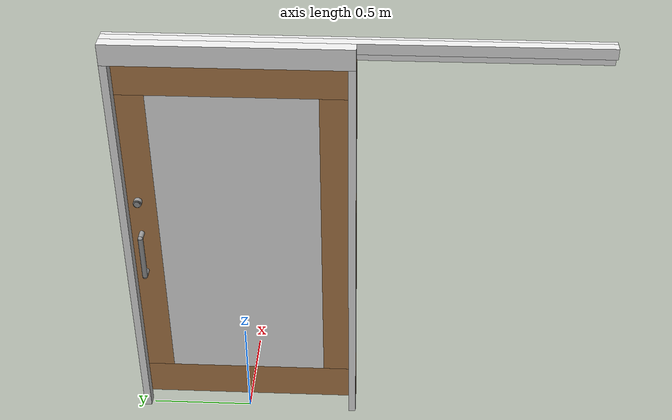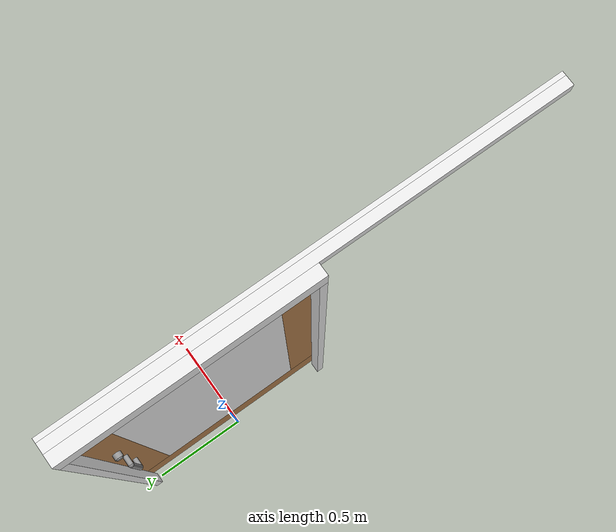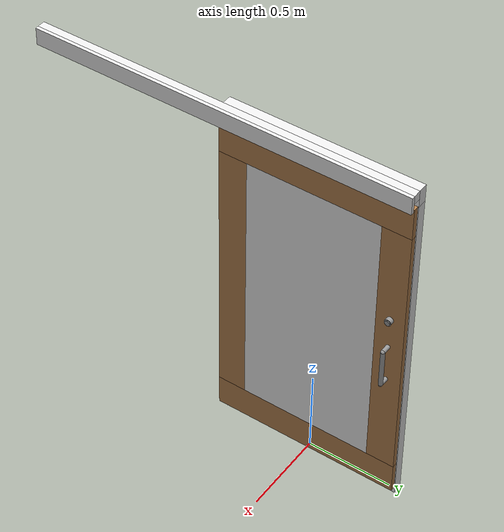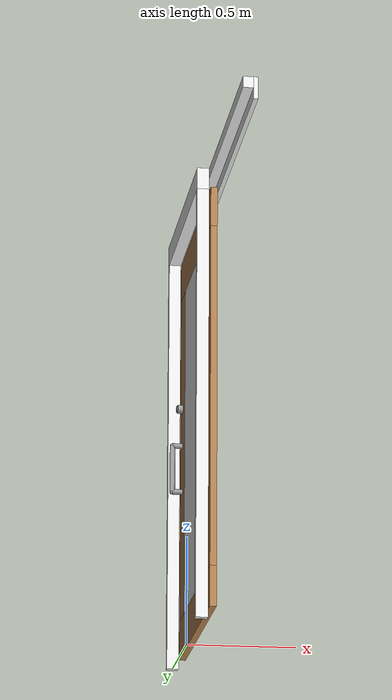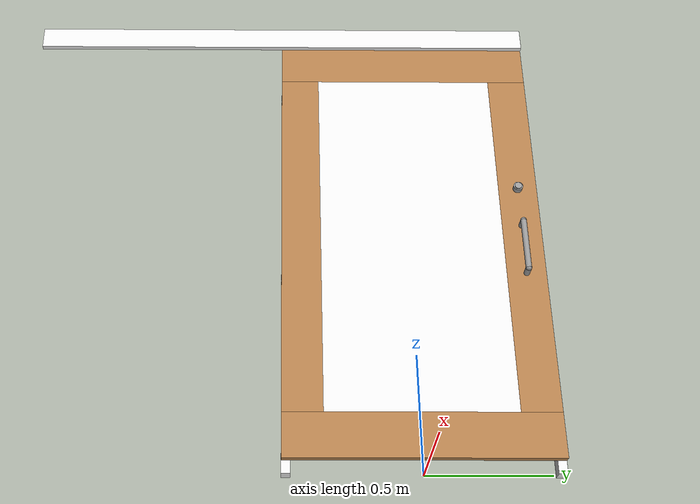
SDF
<?xml version="1.0" ?>
<sdf version="1.4">
    <model name='openable_sliding_door'>
      <joint name="frame_to_world_joint" type="revolute">
          <parent>world</parent>
          <child>frame</child>
          <!-- Mimic fixed joint  -->
          <axis>
              <xyz>0 0 1</xyz>
              <limit>
                  <upper>0</upper>
                  <lower>0</lower>
              </limit>
          </axis>
      </joint>
      <link name='frame'>
        <inertial>
          <mass>50</mass>
          <inertia>
            <ixx>1</ixx>
            <ixy>0</ixy>
            <ixz>0</ixz>
            <iyy>1</iyy>
            <iyz>0</iyz>
            <izz>1</izz>
          </inertia>
        </inertial>
        <visual name='right_frame'>
          <pose>0 0.5325 0.995 0 0 0</pose>
          <geometry>
            <box>
              <size>0.055 0.035 1.990</size>
            </box>
          </geometry>
          <material>
            <script>
              <uri>model://base_materials/color/scripts</uri>
              <name>hsr_color/white</name>
            </script>
          </material>
        </visual>
        <collision name='collision_right_frame'>
          <pose>0 0.5325 0.995 0 0 0</pose>
          <geometry>
            <box>
              <size>0.055 0.035 1.990</size>
            </box>
          </geometry>
          <max_contacts>10</max_contacts>
          <surface>
            <bounce/>
            <friction>
              <ode/>
            </friction>
            <contact>
              <ode/>
            </contact>
          </surface>
        </collision>
        <visual name='left_frame'>
          <pose>0 -0.5325 0.995 0 0 0</pose>
          <geometry>
            <box>
              <size>0.055 0.035 1.990</size>
            </box>
          </geometry>
          <material>
            <script>
              <uri>model://base_materials/color/scripts</uri>
              <name>hsr_color/white</name>
            </script>
          </material>
        </visual>
        <collision name='collision_left_frame'>
          <pose>0 -0.5325 0.995 0 0 0</pose>
          <geometry>
            <box>
              <size>0.055 0.035 1.990</size>
            </box>
          </geometry>
          <max_contacts>10</max_contacts>
          <surface>
            <bounce/>
            <friction>
              <ode/>
            </friction>
            <contact>
              <ode/>
            </contact>
          </surface>
        </collision>
        <visual name='top_frame'>
          <pose>0 0 2.040 0 0 0</pose>
          <geometry>
            <box>
              <size>0.055 1.1 0.1</size>
            </box>
          </geometry>
          <material>
            <script>
              <uri>model://base_materials/color/scripts</uri>
              <name>hsr_color/white</name>
            </script>
          </material>
        </visual>
        <collision name='collision_top_frame'>
          <pose>0 0 2.040 0 0 0</pose>
          <geometry>
            <box>
              <size>0.055 1.1 0.1</size>
            </box>
          </geometry>
          <max_contacts>10</max_contacts>
          <surface>
            <bounce/>
            <friction>
              <ode/>
            </friction>
            <contact>
              <ode/>
            </contact>
          </surface>
        </collision>

        <visual name='top_guard'>
          <pose>0.05 -0.55 2.065 0 0 0</pose>
          <geometry>
            <box>
              <size>0.045 2.2 0.05</size>
            </box>
          </geometry>
          <material>
            <script>
              <uri>model://base_materials/color/scripts</uri>
              <name>hsr_color/white</name>
            </script>
          </material>
        </visual>
        <collision name='collision_top_guard'>
          <pose>0.05 -0.55 2.065 0 0 0</pose>
          <geometry>
            <box>
              <size>0.045 2.2 0.05</size>
            </box>
          </geometry>
          <max_contacts>10</max_contacts>
          <surface>
            <bounce/>
            <friction>
              <ode/>
            </friction>
            <contact>
              <ode/>
            </contact>
          </surface>
        </collision>
        <visual name='front_guard'>
          <pose>0.0825 -0.55 2.04 0 0 0</pose>
          <geometry>
            <box>
              <size>0.020 2.2 0.10</size>
            </box>
          </geometry>
          <material>
            <script>
              <uri>model://base_materials/color/scripts</uri>
              <name>hsr_color/white</name>
            </script>
          </material>
        </visual>
        <collision name='collision_front_guard'>
          <pose>0.0825 -0.55 2.04 0 0 0</pose>
          <geometry>
            <box>
              <size>0.020 2.2 0.10</size>
            </box>
          </geometry>
          <max_contacts>10</max_contacts>
          <surface>
            <bounce/>
            <friction>
              <ode/>
            </friction>
            <contact>
              <ode/>
            </contact>
          </surface>
        </collision>
      </link>
      <link name='door'>
        <pose>-0.0275 0 0 0 0 0</pose>
        <visual name='glass'>
          <pose>0.0775 0 1.0250 0 0 0</pose>
          <geometry>
            <box>
              <size>0.030 0.77 1.580</size>
            </box>
          </geometry>
          <material>
            <script>
              <name>hsr_color/white_transparency1</name>
              <name>hsr_color/cornflowerblue_transparency1</name>
            </script>
          </material>
        </visual>
        <collision name='collision_glass'>
          <pose>0.0775 0 1.0250 0 0 0</pose>
          <geometry>
            <box>
              <size>0.030 0.77 1.580</size>
            </box>
          </geometry>
          <max_contacts>10</max_contacts>
          <surface>
            <bounce/>
            <friction>
              <ode/>
            </friction>
            <contact>
              <ode/>
            </contact>
          </surface>
        </collision>
        <visual name='top_frame'>
          <pose>0.0775 0 1.9075 0 0 0</pose>
          <geometry>
            <box>
              <size>0.030 1.1 0.185</size>
            </box>
          </geometry>
          <material>
            <script>
              <uri>model://base_materials/wood/scripts/wood.material</uri>
              <name>base_materials/wood</name>
            </script>
          </material>
        </visual>
        <collision name='collision_top_frame'>
          <pose>0.0775 0 1.9075 0 0 0</pose>
          <geometry>
            <box>
              <size>0.030 1.1 0.185</size>
            </box>
          </geometry>
          <max_contacts>10</max_contacts>
          <surface>
            <bounce/>
            <friction>
              <ode/>
            </friction>
            <contact>
              <ode/>
            </contact>
          </surface>
        </collision>
        <visual name='right_frame'>
          <pose>0.0775 0.4675 1.0250 0 0 0</pose>
          <geometry>
            <box>
              <size>0.030 0.165 1.580</size>
            </box>
          </geometry>
          <material>
            <script>
              <uri>model://base_materials/wood/scripts/wood.material</uri>
              <name>base_materials/wood</name>
            </script>
          </material>
        </visual>
        <collision name='collision_right_frame'>
          <pose>0.0775 0.4675 1.0250 0 0 0</pose>
          <geometry>
            <box>
              <size>0.030 0.165 1.580</size>
            </box>
          </geometry>
          <max_contacts>10</max_contacts>
          <surface>
            <bounce/>
            <friction>
              <ode/>
            </friction>
            <contact>
              <ode/>
            </contact>
          </surface>
        </collision>
        <visual name='left_frame'>
          <pose>0.0775 -0.4675 1.0250 0 0 0</pose>
          <geometry>
            <box>
              <size>0.030 0.165 1.580</size>
            </box>
          </geometry>
          <material>
            <script>
              <uri>model://base_materials/wood/scripts/wood.material</uri>
              <name>base_materials/wood</name>
            </script>
          </material>
        </visual>
        <collision name='collision_left_frame'>
          <pose>0.0775 -0.4675 1.0250 0 0 0</pose>
          <geometry>
            <box>
              <size>0.030 0.165 1.580</size>
            </box>
          </geometry>
          <max_contacts>10</max_contacts>
          <surface>
            <bounce/>
            <friction>
              <ode/>
            </friction>
            <contact>
              <ode/>
            </contact>
          </surface>
        </collision>
        <visual name='bottom_frame'>
          <pose>0.0775 0 0.1425 0 0 0</pose>
          <geometry>
            <box>
              <size>0.030 1.1 0.185</size>
            </box>
          </geometry>
          <material>
            <script>
              <uri>model://base_materials/wood/scripts/wood.material</uri>
              <name>base_materials/wood</name>
            </script>
          </material>
        </visual>
        <collision name='collision_bottom_frame'>
          <pose>0.0775 0 0.1425 0 0 0</pose>
          <geometry>
            <box>
              <size>0.030 1.1 0.185</size>
            </box>
          </geometry>
          <max_contacts>10</max_contacts>
          <surface>
            <bounce/>
            <friction>
              <ode/>
            </friction>
            <contact>
              <ode/>
            </contact>
          </surface>
        </collision>
        <visual name='handle_top_frame'>
          <pose>0.0775 0.4675 1.0675 0 1.5708 0</pose>
          <geometry>
            <cylinder>
              <radius>0.0125</radius>
              <length>0.125</length>
            </cylinder>
          </geometry>
          <material>
            <script>
              <uri>model://base_materials/color/scripts</uri>
              <name>hsr_color/grey</name>
            </script>
          </material>
        </visual>
        <collision name='collision_handle_top_frame'>
          <pose>0.0775 0.4675 1.0675 0 1.5708 0</pose>
          <geometry>
            <cylinder>
              <radius>0.0125</radius>
              <length>0.125</length>
            </cylinder>
          </geometry>
          <max_contacts>10</max_contacts>
          <surface>
            <bounce/>
            <friction>
              <ode/>
            </friction>
            <contact>
              <ode/>
            </contact>
          </surface>
        </collision>
        <visual name='handle_bottom_frame'>
          <pose>0.0775 0.4675 0.8425 0 1.5708 0</pose>
          <geometry>
            <cylinder>
              <radius>0.0125</radius>
              <length>0.125</length>
            </cylinder>
          </geometry>
          <material>
            <script>
              <uri>model://base_materials/color/scripts</uri>
              <name>hsr_color/grey</name>
            </script>
          </material>
        </visual>
        <collision name='collision_handle_bottom_frame'>
          <pose>0.0775 0.4675 0.8425 0 1.5708 0</pose>
          <geometry>
            <cylinder>
              <radius>0.0125</radius>
              <length>0.125</length>
            </cylinder>
          </geometry>
          <max_contacts>10</max_contacts>
          <surface>
            <bounce/>
            <friction>
              <ode/>
            </friction>
            <contact>
              <ode/>
            </contact>
          </surface>
        </collision>
        <visual name='handle_front_frame'>
          <pose>0.14 0.4675 0.955 0 0 0</pose>
          <geometry>
            <cylinder>
              <radius>0.0125</radius>
              <length>0.225</length>
            </cylinder>
          </geometry>
          <material>
            <script>
              <uri>model://base_materials/color/scripts</uri>
              <name>hsr_color/grey</name>
            </script>
          </material>
        </visual>
        <collision name='collision_handle_front_frame'>
          <pose>0.14 0.4675 0.955 0 0 0</pose>
          <geometry>
            <cylinder>
              <radius>0.0125</radius>
              <length>0.225</length>
            </cylinder>
          </geometry>
          <max_contacts>10</max_contacts>
          <surface>
            <bounce/>
            <friction>
              <ode/>
            </friction>
            <contact>
              <ode/>
            </contact>
          </surface>
        </collision>
        <visual name='handle_back_frame'>
          <pose>0.015 0.4675 0.955 0 0 0</pose>
          <geometry>
            <cylinder>
              <radius>0.0125</radius>
              <length>0.225</length>
            </cylinder>
          </geometry>
          <material>
            <script>
              <uri>model://base_materials/color/scripts</uri>
              <name>hsr_color/grey</name>
            </script>
          </material>
        </visual>
        <collision name='collision_handle_back_frame'>
          <pose>0.015 0.4675 0.955 0 0 0</pose>
          <geometry>
            <cylinder>
              <radius>0.0125</radius>
              <length>0.225</length>
            </cylinder>
          </geometry>
          <max_contacts>10</max_contacts>
          <surface>
            <bounce/>
            <friction>
              <ode/>
            </friction>
            <contact>
              <ode/>
            </contact>
          </surface>
        </collision>
        <visual name='handle_front_top_corner'>
          <pose>0.14 0.4675 1.0675 0 0 0</pose>
          <geometry>
            <sphere>
              <radius>0.0125</radius>
            </sphere>
          </geometry>
          <material>
            <script>
              <uri>model://base_materials/color/scripts</uri>
              <name>hsr_color/grey</name>
            </script>
          </material>
        </visual>
        <collision name='collision_handle_front_top_corner'>
          <pose>0.14 0.4675 1.0675 0 0 0</pose>
          <geometry>
            <sphere>
              <radius>0.0125</radius>
            </sphere>
          </geometry>
          <max_contacts>10</max_contacts>
          <surface>
            <bounce/>
            <friction>
              <ode/>
            </friction>
            <contact>
              <ode/>
            </contact>
          </surface>
        </collision>
        <visual name='handle_front_bottom_corner'>
          <pose>0.14 0.4675 0.8425 0 0 0</pose>
          <geometry>
            <sphere>
              <radius>0.0125</radius>
            </sphere>
          </geometry>
          <material>
            <script>
              <uri>model://base_materials/color/scripts</uri>
              <name>hsr_color/grey</name>
            </script>
          </material>
        </visual>
        <collision name='collision_handle_front_bottom_corner'>
          <pose>0.14 0.4675 0.8425 0 0 0</pose>
          <geometry>
            <sphere>
              <radius>0.0125</radius>
            </sphere>
          </geometry>
          <max_contacts>10</max_contacts>
          <surface>
            <bounce/>
            <friction>
              <ode/>
            </friction>
            <contact>
              <ode/>
            </contact>
          </surface>
        </collision>
        <visual name='handle_back_top_corner'>
          <pose>0.015 0.4675 1.0675 0 0 0</pose>
          <geometry>
            <sphere>
              <radius>0.0125</radius>
            </sphere>
          </geometry>
          <material>
            <script>
              <uri>model://base_materials/color/scripts</uri>
              <name>hsr_color/grey</name>
            </script>
          </material>
        </visual>
        <collision name='collision_handle_back_top_corner'>
          <pose>0.015 0.4675 1.0675 0 0 0</pose>
          <geometry>
            <sphere>
              <radius>0.0125</radius>
            </sphere>
          </geometry>
          <max_contacts>10</max_contacts>
          <surface>
            <bounce/>
            <friction>
              <ode/>
            </friction>
            <contact>
              <ode/>
            </contact>
          </surface>
        </collision>
        <visual name='handle_back_bottom_corner'>
          <pose>0.015 0.4675 0.8425 0 0 0</pose>
          <geometry>
            <sphere>
              <radius>0.0125</radius>
            </sphere>
          </geometry>
          <material>
            <script>
              <uri>model://base_materials/color/scripts</uri>
              <name>hsr_color/grey</name>
            </script>
          </material>
        </visual>
        <collision name='collision_handle_back_bottom_corner'>
          <pose>0.015 0.4675 0.8425 0 0 0</pose>
          <geometry>
            <sphere>
              <radius>0.0125</radius>
            </sphere>
          </geometry>
          <max_contacts>10</max_contacts>
          <surface>
            <bounce/>
            <friction>
              <ode/>
            </friction>
            <contact>
              <ode/>
            </contact>
          </surface>
        </collision>
        <visual name='handle_lock1'>
          <pose>0.0775 0.4675 1.25 0 1.5708 0</pose>
          <geometry>
            <cylinder>
              <radius>0.02</radius>
              <length>0.08</length>
            </cylinder>
          </geometry>
          <material>
            <script>
              <uri>model://base_materials/color/scripts</uri>
              <name>hsr_color/grey</name>
            </script>
          </material>
        </visual>
        <collision name='collision_handle_lock1'>
          <pose>0.0775 0.4675 1.25 0 1.5708 0</pose>
          <geometry>
            <cylinder>
              <radius>0.02</radius>
              <length>0.08</length>
            </cylinder>
          </geometry>
          <max_contacts>10</max_contacts>
          <surface>
            <bounce/>
            <friction>
              <ode/>
            </friction>
            <contact>
              <ode/>
            </contact>
          </surface>
        </collision>
        <visual name='handle_lock2'>
          <pose>0.0775 0.4675 1.25 0 1.5708 0</pose>
          <geometry>
            <cylinder>
              <radius>0.015</radius>
              <length>0.09</length>
            </cylinder>
          </geometry>
          <material>
            <script>
              <uri>model://base_materials/color/scripts</uri>
              <name>hsr_color/grey</name>
            </script>
          </material>
        </visual>
        <collision name='collision_handle_lock2'>
          <pose>0.0775 0.4675 1.25 0 1.5708 0</pose>
          <geometry>
            <cylinder>
              <radius>0.015</radius>
              <length>0.09</length>
            </cylinder>
          </geometry>
          <max_contacts>10</max_contacts>
          <surface>
            <bounce/>
            <friction>
              <ode/>
            </friction>
            <contact>
              <ode/>
            </contact>
          </surface>
        </collision>
        <velocity_decay>
          <linear>0</linear>
          <angular>0</angular>
        </velocity_decay>
        <self_collide>0</self_collide>
        <kinematic>0</kinematic>
        <gravity>1</gravity>
      </link>
      <joint name="top_sliding_joint" type="prismatic">
        <parent>frame</parent>
        <child>door</child>
        <axis>
            <dynamics>
              <damping>1.000000</damping>
              <friction>1.000000</friction>
            </dynamics>
            <limit>
                <lower>-1.0</lower>
                <upper>0</upper>
            </limit>
            <xyz>0 1 0</xyz>
        </axis>
      </joint>
      <static>0</static>
    </model>
</sdf>
